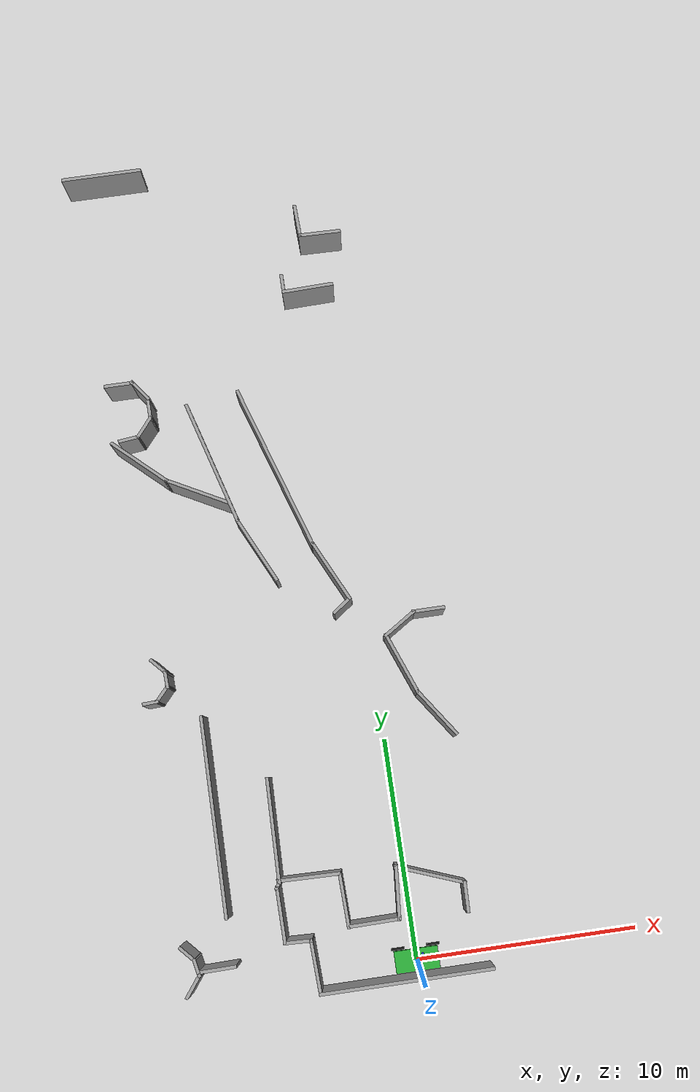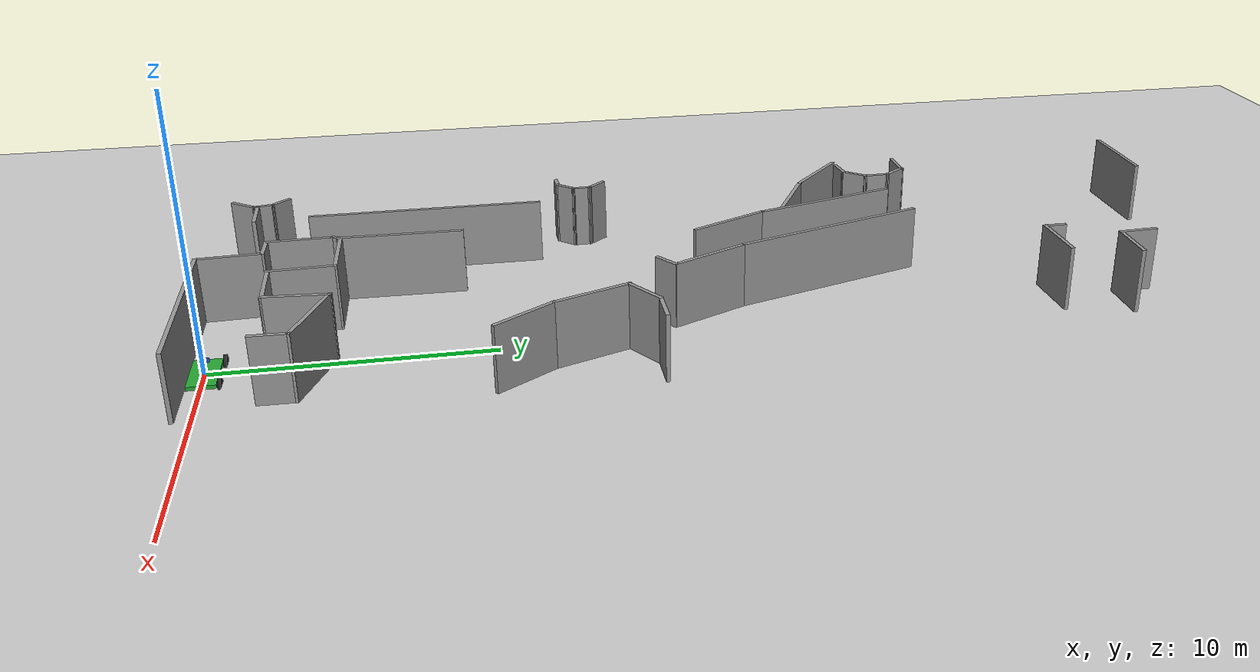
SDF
<sdf version="1.6">
 <world name="default">
  <model name="ground_plane">
   <static>1</static>
   <link name="link">
    <collision name="collision">
     <geometry><plane><normal>0 0 1</normal><size>100 100</size></plane></geometry>
     <surface><friction><ode><mu>100</mu><mu2>50</mu2></ode></friction></surface>
    </collision>
    <visual name="visual">
     <cast_shadows>0</cast_shadows>
     <geometry><plane><normal>0 0 1</normal><size>100 100</size></plane></geometry>
     <material>
      <script><uri>file://media/materials/scripts/gazebo.material</uri><name>Gazebo/Grey</name></script>
     </material>
    </visual>
   </link>
  </model>
  <model name="mall_new_reduce_size">
   <pose>-6.8092 7.5529 0 0 -0 0</pose>
   <link name="Wall_102">
    <collision name="Wall_102_Collision">
     <geometry><box><size>0.911014 0.15 2.5</size></box></geometry>
     <pose>0 0 1.25 0 -0 0</pose>
    </collision>
    <visual name="Wall_102_Visual">
     <pose>0 0 1.25 0 -0 0</pose>
     <geometry><box><size>0.911014 0.15 2.5</size></box></geometry>
     <material>
      <script><uri>file://media/materials/scripts/gazebo.material</uri><name>Gazebo/Grey</name></script>
      <ambient>1 1 1 1</ambient>
     </material>
     <meta><layer>0</layer></meta>
    </visual>
    <pose>5.13908 23.8484 0 0 -0 -1.5708</pose>
   </link>
   <link name="Wall_103">
    <collision name="Wall_103_Collision">
     <geometry><box><size>2.3915 0.15 2.5</size></box></geometry>
     <pose>0 0 1.25 0 -0 0</pose>
    </collision>
    <visual name="Wall_103_Visual">
     <pose>0 0 1.25 0 -0 0</pose>
     <geometry><box><size>2.3915 0.15 2.5</size></box></geometry>
     <material>
      <script><uri>file://media/materials/scripts/gazebo.material</uri><name>Gazebo/Grey</name></script>
      <ambient>1 1 1 1</ambient>
     </material>
     <meta><layer>0</layer></meta>
    </visual>
    <pose>6.25953 23.4864 0 0 -0 0.02316</pose>
   </link>
   <link name="Wall_126">
    <collision name="Wall_126_Collision">
     <geometry><box><size>1.5 0.15 2.5</size></box></geometry>
     <pose>0 0 1.25 0 -0 0</pose>
    </collision>
    <visual name="Wall_126_Visual">
     <pose>0 0 1.25 0 -0 0</pose>
     <geometry><box><size>1.5 0.15 2.5</size></box></geometry>
     <material>
      <script><uri>file://media/materials/scripts/gazebo.material</uri><name>Gazebo/Grey</name></script>
      <ambient>1 1 1 1</ambient>
     </material>
     <meta><layer>0</layer></meta>
    </visual>
    <pose>9.56035 7.86068 0 0 -0 3.14159</pose>
   </link>
   <link name="Wall_127">
    <collision name="Wall_127_Collision">
     <geometry><box><size>1.79669 0.15 2.5</size></box></geometry>
     <pose>0 0 1.25 0 -0 0</pose>
    </collision>
    <visual name="Wall_127_Visual">
     <pose>0 0 1.25 0 -0 0</pose>
     <geometry><box><size>1.79669 0.15 2.5</size></box></geometry>
     <material>
      <script><uri>file://media/materials/scripts/gazebo.material</uri><name>Gazebo/Grey</name></script>
      <ambient>1 1 1 1</ambient>
     </material>
     <meta><layer>0</layer></meta>
    </visual>
    <pose>8.19253 7.41582 0 0 -0 -2.57079</pose>
   </link>
   <link name="Wall_128">
    <collision name="Wall_128_Collision">
     <geometry><box><size>3.04987 0.15 2.5</size></box></geometry>
     <pose>0 0 1.25 0 -0 0</pose>
    </collision>
    <visual name="Wall_128_Visual">
     <pose>0 0 1.25 0 -0 0</pose>
     <geometry><box><size>3.04987 0.15 2.5</size></box></geometry>
     <material>
      <script><uri>file://media/materials/scripts/gazebo.material</uri><name>Gazebo/Grey</name></script>
      <ambient>1 1 1 1</ambient>
     </material>
     <meta><layer>0</layer></meta>
    </visual>
    <pose>8.01735 5.63901 0 0 -0 -1.20574</pose>
   </link>
   <link name="Wall_129">
    <collision name="Wall_129_Collision">
     <geometry><box><size>2.67124 0.15 2.5</size></box></geometry>
     <pose>0 0 1.25 0 -0 0</pose>
    </collision>
    <visual name="Wall_129_Visual">
     <pose>0 0 1.25 0 -0 0</pose>
     <geometry><box><size>2.67124 0.15 2.5</size></box></geometry>
     <material>
      <script><uri>file://media/materials/scripts/gazebo.material</uri><name>Gazebo/Grey</name></script>
      <ambient>1 1 1 1</ambient>
     </material>
     <meta><layer>0</layer></meta>
    </visual>
    <pose>9.25128 3.23607 0 0 -0 -0.966457</pose>
   </link>
   <link name="Wall_245">
    <collision name="Wall_245_Collision">
     <geometry><box><size>4.70437 0.15 2.5</size></box></geometry>
     <pose>0 0 1.25 0 -0 0</pose>
    </collision>
    <visual name="Wall_245_Visual">
     <pose>0 0 1.25 0 -0 0</pose>
     <geometry><box><size>4.70437 0.15 2.5</size></box></geometry>
     <material>
      <script><uri>file://media/materials/scripts/gazebo.material</uri><name>Gazebo/Grey</name></script>
      <ambient>1 1 1 1</ambient>
     </material>
     <meta><layer>0</layer></meta>
    </visual>
    <pose>1.30808 -0.867008 0 0 -0 -1.58931</pose>
   </link>
   <link name="Wall_246">
    <collision name="Wall_246_Collision">
     <geometry><box><size>0.40844 0.15 2.5</size></box></geometry>
     <pose>0 0 1.25 0 -0 0</pose>
    </collision>
    <visual name="Wall_246_Visual">
     <pose>0 0 1.25 0 -0 0</pose>
     <geometry><box><size>0.40844 0.15 2.5</size></box></geometry>
     <material>
      <script><uri>file://media/materials/scripts/gazebo.material</uri><name>Gazebo/Grey</name></script>
      <ambient>1 1 1 1</ambient>
     </material>
     <meta><layer>0</layer></meta>
    </visual>
    <pose>1.19003 -3.26525 0 0 -0 -2.19847</pose>
   </link>
   <link name="Wall_247">
    <collision name="Wall_247_Collision">
     <geometry><box><size>2.53 0.15 2.5</size></box></geometry>
     <pose>0 0 1.25 0 -0 0</pose>
    </collision>
    <visual name="Wall_247_Visual">
     <pose>0 0 1.25 0 -0 0</pose>
     <geometry><box><size>2.53 0.15 2.5</size></box></geometry>
     <material>
      <script><uri>file://media/materials/scripts/gazebo.material</uri><name>Gazebo/Grey</name></script>
      <ambient>1 1 1 1</ambient>
     </material>
     <meta><layer>0</layer></meta>
    </visual>
    <pose>1.14793 -4.55973 0 0 -0 -1.55658</pose>
   </link>
   <link name="Wall_248">
    <collision name="Wall_248_Collision">
     <geometry><box><size>1.286 0.15 2.5</size></box></geometry>
     <pose>0 0 1.25 0 -0 0</pose>
    </collision>
    <visual name="Wall_248_Visual">
     <pose>0 0 1.25 0 -0 0</pose>
     <geometry><box><size>1.286 0.15 2.5</size></box></geometry>
     <material>
      <script><uri>file://media/materials/scripts/gazebo.material</uri><name>Gazebo/Grey</name></script>
      <ambient>1 1 1 1</ambient>
     </material>
     <meta><layer>0</layer></meta>
    </visual>
    <pose>1.73245 -5.78757 0 0 -0 -0.037153</pose>
   </link>
   <link name="Wall_249">
    <collision name="Wall_249_Collision">
     <geometry><box><size>2.45157 0.15 2.5</size></box></geometry>
     <pose>0 0 1.25 0 -0 0</pose>
    </collision>
    <visual name="Wall_249_Visual">
     <pose>0 0 1.25 0 -0 0</pose>
     <geometry><box><size>2.45157 0.15 2.5</size></box></geometry>
     <material>
      <script><uri>file://media/materials/scripts/gazebo.material</uri><name>Gazebo/Grey</name></script>
      <ambient>1 1 1 1</ambient>
     </material>
     <meta><layer>0</layer></meta>
    </visual>
    <pose>2.35085 -6.98766 0 0 -0 -1.52665</pose>
   </link>
   <link name="Wall_250">
    <collision name="Wall_250_Collision">
     <geometry><box><size>7.76065 0.15 2.5</size></box></geometry>
     <pose>0 0 1.25 0 -0 0</pose>
    </collision>
    <visual name="Wall_250_Visual">
     <pose>0 0 1.25 0 -0 0</pose>
     <geometry><box><size>7.76065 0.15 2.5</size></box></geometry>
     <material>
      <script><uri>file://media/materials/scripts/gazebo.material</uri><name>Gazebo/Grey</name></script>
      <ambient>1 1 1 1</ambient>
     </material>
     <meta><layer>0</layer></meta>
    </visual>
    <pose>6.20696 -8.14975 0 0 -0 0.000586</pose>
   </link>
   <link name="Wall_253">
    <collision name="Wall_253_Collision">
     <geometry><box><size>1.38548 0.15 2.5</size></box></geometry>
     <pose>0 0 1.25 0 -0 0</pose>
    </collision>
    <visual name="Wall_253_Visual">
     <pose>0 0 1.25 0 -0 0</pose>
     <geometry><box><size>1.38548 0.15 2.5</size></box></geometry>
     <material>
      <script><uri>file://media/materials/scripts/gazebo.material</uri><name>Gazebo/Grey</name></script>
      <ambient>1 1 1 1</ambient>
     </material>
     <meta><layer>0</layer></meta>
    </visual>
    <pose>9.31734 -4.9398 0 0 -0 1.54519</pose>
   </link>
   <link name="Wall_254">
    <collision name="Wall_254_Collision">
     <geometry><box><size>3.27138 0.15 2.5</size></box></geometry>
     <pose>0 0 1.25 0 -0 0</pose>
    </collision>
    <visual name="Wall_254_Visual">
     <pose>0 0 1.25 0 -0 0</pose>
     <geometry><box><size>3.27138 0.15 2.5</size></box></geometry>
     <material>
      <script><uri>file://media/materials/scripts/gazebo.material</uri><name>Gazebo/Grey</name></script>
      <ambient>1 1 1 1</ambient>
     </material>
     <meta><layer>0</layer></meta>
    </visual>
    <pose>7.88874 -3.75366 0 0 -0 2.77875</pose>
   </link>
   <link name="Wall_255">
    <collision name="Wall_255_Collision">
     <geometry><box><size>2.43165 0.15 2.5</size></box></geometry>
     <pose>0 0 1.25 0 -0 0</pose>
    </collision>
    <visual name="Wall_255_Visual">
     <pose>0 0 1.25 0 -0 0</pose>
     <geometry><box><size>2.43165 0.15 2.5</size></box></geometry>
     <material>
      <script><uri>file://media/materials/scripts/gazebo.material</uri><name>Gazebo/Grey</name></script>
      <ambient>1 1 1 1</ambient>
     </material>
     <meta><layer>0</layer></meta>
    </visual>
    <pose>6.35442 -4.32233 0 0 -0 -1.64969</pose>
   </link>
   <link name="Wall_256">
    <collision name="Wall_256_Collision">
     <geometry><box><size>2.39373 0.15 2.5</size></box></geometry>
     <pose>0 0 1.25 0 -0 0</pose>
    </collision>
    <visual name="Wall_256_Visual">
     <pose>0 0 1.25 0 -0 0</pose>
     <geometry><box><size>2.39373 0.15 2.5</size></box></geometry>
     <material>
      <script><uri>file://media/materials/scripts/gazebo.material</uri><name>Gazebo/Grey</name></script>
      <ambient>1 1 1 1</ambient>
     </material>
     <meta><layer>0</layer></meta>
    </visual>
    <pose>5.14271 -5.45702 0 0 -0 -3.13083</pose>
   </link>
   <link name="Wall_257">
    <collision name="Wall_257_Collision">
     <geometry><box><size>2.48743 0.15 2.5</size></box></geometry>
     <pose>0 0 1.25 0 -0 0</pose>
    </collision>
    <visual name="Wall_257_Visual">
     <pose>0 0 1.25 0 -0 0</pose>
     <geometry><box><size>2.48743 0.15 2.5</size></box></geometry>
     <material>
      <script><uri>file://media/materials/scripts/gazebo.material</uri><name>Gazebo/Grey</name></script>
      <ambient>1 1 1 1</ambient>
     </material>
     <meta><layer>0</layer></meta>
    </visual>
    <pose>3.98296 -4.31566 0 0 -0 1.60328</pose>
   </link>
   <link name="Wall_258">
    <collision name="Wall_258_Collision">
     <geometry><box><size>2.86843 0.15 2.5</size></box></geometry>
     <pose>0 0 1.25 0 -0 0</pose>
    </collision>
    <visual name="Wall_258_Visual">
     <pose>0 0 1.25 0 -0 0</pose>
     <geometry><box><size>2.86843 0.15 2.5</size></box></geometry>
     <material>
      <script><uri>file://media/materials/scripts/gazebo.material</uri><name>Gazebo/Grey</name></script>
      <ambient>1 1 1 1</ambient>
     </material>
     <meta><layer>0</layer></meta>
    </visual>
    <pose>2.58612 -3.10264 0 0 -0 3.11933</pose>
   </link>
   <link name="Wall_263">
    <collision name="Wall_263_Collision">
     <geometry><box><size>9.01306 0.15 2.5</size></box></geometry>
     <pose>0 0 1.25 0 -0 0</pose>
    </collision>
    <visual name="Wall_263_Visual">
     <pose>0 0 1.25 0 -0 0</pose>
     <geometry><box><size>9.01306 0.15 2.5</size></box></geometry>
     <material>
      <script><uri>file://media/materials/scripts/gazebo.material</uri><name>Gazebo/Grey</name></script>
      <ambient>1 1 1 1</ambient>
     </material>
     <meta><layer>0</layer></meta>
    </visual>
    <pose>-1.21952 0.09951 0 0 -0 -1.57583</pose>
   </link>
   <link name="Wall_270">
    <collision name="Wall_270_Collision">
     <geometry><box><size>0.937561 0.15 2.5</size></box></geometry>
     <pose>0 0 1.25 0 -0 0</pose>
    </collision>
    <visual name="Wall_270_Visual">
     <pose>0 0 1.25 0 -0 0</pose>
     <geometry><box><size>0.937561 0.15 2.5</size></box></geometry>
     <material>
      <script><uri>file://media/materials/scripts/gazebo.material</uri><name>Gazebo/Grey</name></script>
      <ambient>1 1 1 1</ambient>
     </material>
     <meta><layer>0</layer></meta>
    </visual>
    <pose>-3.13761 -5.61857 0 0 -0 -0.825217</pose>
   </link>
   <link name="Wall_271">
    <collision name="Wall_271_Collision">
     <geometry><box><size>0.841723 0.15 2.5</size></box></geometry>
     <pose>0 0 1.25 0 -0 0</pose>
    </collision>
    <visual name="Wall_271_Visual">
     <pose>0 0 1.25 0 -0 0</pose>
     <geometry><box><size>0.841723 0.15 2.5</size></box></geometry>
     <material>
      <script><uri>file://media/materials/scripts/gazebo.material</uri><name>Gazebo/Grey</name></script>
      <ambient>1 1 1 1</ambient>
     </material>
     <meta><layer>0</layer></meta>
    </visual>
    <pose>-2.79889 -6.26091 0 0 -0 -1.36232</pose>
   </link>
   <link name="Wall_272">
    <collision name="Wall_272_Collision">
     <geometry><box><size>1.2184 0.15 2.5</size></box></geometry>
     <pose>0 0 1.25 0 -0 0</pose>
    </collision>
    <visual name="Wall_272_Visual">
     <pose>0 0 1.25 0 -0 0</pose>
     <geometry><box><size>1.2184 0.15 2.5</size></box></geometry>
     <material>
      <script><uri>file://media/materials/scripts/gazebo.material</uri><name>Gazebo/Grey</name></script>
      <ambient>1 1 1 1</ambient>
     </material>
     <meta><layer>0</layer></meta>
    </visual>
    <pose>-3.04961 -7.02531 0 0 -0 -2.21847</pose>
   </link>
   <link name="Wall_280">
    <collision name="Wall_280_Collision">
     <geometry><box><size>1.75812 0.15 2.5</size></box></geometry>
     <pose>0 0 1.25 0 -0 0</pose>
    </collision>
    <visual name="Wall_280_Visual">
     <pose>0 0 1.25 0 -0 0</pose>
     <geometry><box><size>1.75812 0.15 2.5</size></box></geometry>
     <material>
      <script><uri>file://media/materials/scripts/gazebo.material</uri><name>Gazebo/Grey</name></script>
      <ambient>1 1 1 1</ambient>
     </material>
     <meta><layer>0</layer></meta>
    </visual>
    <pose>-1.93612 -6.45549 0 0 -0 0.013364</pose>
   </link>
   <link name="Wall_321">
    <collision name="Wall_321_Collision">
     <geometry><box><size>0.996431 0.15 2.5</size></box></geometry>
     <pose>0 0 1.25 0 -0 0</pose>
    </collision>
    <visual name="Wall_321_Visual">
     <pose>0 0 1.25 0 -0 0</pose>
     <geometry><box><size>0.996431 0.15 2.5</size></box></geometry>
     <material>
      <script><uri>file://media/materials/scripts/gazebo.material</uri><name>Gazebo/Grey</name></script>
      <ambient>1 1 1 1</ambient>
     </material>
     <meta><layer>0</layer></meta>
    </visual>
    <pose>-2.78786 7.05157 0 0 -0 -0.833746</pose>
   </link>
   <link name="Wall_322">
    <collision name="Wall_322_Collision">
     <geometry><box><size>0.808487 0.15 2.5</size></box></geometry>
     <pose>0 0 1.25 0 -0 0</pose>
    </collision>
    <visual name="Wall_322_Visual">
     <pose>0 0 1.25 0 -0 0</pose>
     <geometry><box><size>0.808487 0.15 2.5</size></box></geometry>
     <material>
      <script><uri>file://media/materials/scripts/gazebo.material</uri><name>Gazebo/Grey</name></script>
      <ambient>1 1 1 1</ambient>
     </material>
     <meta><layer>0</layer></meta>
    </visual>
    <pose>-2.51788 6.42855 0 0 -0 -1.52686</pose>
   </link>
   <link name="Wall_323">
    <collision name="Wall_323_Collision">
     <geometry><box><size>0.955507 0.15 2.5</size></box></geometry>
     <pose>0 0 1.25 0 -0 0</pose>
    </collision>
    <visual name="Wall_323_Visual">
     <pose>0 0 1.25 0 -0 0</pose>
     <geometry><box><size>0.955507 0.15 2.5</size></box></geometry>
     <material>
      <script><uri>file://media/materials/scripts/gazebo.material</uri><name>Gazebo/Grey</name></script>
      <ambient>1 1 1 1</ambient>
     </material>
     <meta><layer>0</layer></meta>
    </visual>
    <pose>-2.77393 5.81089 0 0 -0 -2.30728</pose>
   </link>
   <link name="Wall_324">
    <collision name="Wall_324_Collision">
     <geometry><box><size>0.751238 0.15 2.5</size></box></geometry>
     <pose>0 0 1.25 0 -0 0</pose>
    </collision>
    <visual name="Wall_324_Visual">
     <pose>0 0 1.25 0 -0 0</pose>
     <geometry><box><size>0.751238 0.15 2.5</size></box></geometry>
     <material>
      <script><uri>file://media/materials/scripts/gazebo.material</uri><name>Gazebo/Grey</name></script>
      <ambient>1 1 1 1</ambient>
     </material>
     <meta><layer>0</layer></meta>
    </visual>
    <pose>-3.34446 5.48841 0 0 -0 -3.09342</pose>
   </link>
   <link name="Wall_54">
    <collision name="Wall_54_Collision">
     <geometry><box><size>3.72999 0.15 2.5</size></box></geometry>
     <pose>0 0 1.25 0 -0 0</pose>
    </collision>
    <visual name="Wall_54_Visual">
     <pose>0 0 1.25 0 -0 0</pose>
     <geometry><box><size>3.72999 0.15 2.5</size></box></geometry>
     <material>
      <script><uri>file://media/materials/scripts/gazebo.material</uri><name>Gazebo/Grey</name></script>
      <ambient>1 1 1 1</ambient>
     </material>
     <meta><layer>0</layer></meta>
    </visual>
    <pose>-2.53762 30.2774 0 0 -0 -0.007328</pose>
   </link>
   <link name="Wall_75">
    <collision name="Wall_75_Collision">
     <geometry><box><size>0.996724 0.15 2.5</size></box></geometry>
     <pose>0 0 1.25 0 -0 0</pose>
    </collision>
    <visual name="Wall_75_Visual">
     <pose>0 0 1.25 0 -0 0</pose>
     <geometry><box><size>0.996724 0.15 2.5</size></box></geometry>
     <material>
      <script><uri>file://media/materials/scripts/gazebo.material</uri><name>Gazebo/Grey</name></script>
      <ambient>1 1 1 1</ambient>
     </material>
     <meta><layer>0</layer></meta>
    </visual>
    <pose>-2.811 17.5721 0 0 -0 0.113209</pose>
   </link>
   <link name="Wall_76">
    <collision name="Wall_76_Collision">
     <geometry><box><size>1.17578 0.15 2.5</size></box></geometry>
     <pose>0 0 1.25 0 -0 0</pose>
    </collision>
    <visual name="Wall_76_Visual">
     <pose>0 0 1.25 0 -0 0</pose>
     <geometry><box><size>1.17578 0.15 2.5</size></box></geometry>
     <material>
      <script><uri>file://media/materials/scripts/gazebo.material</uri><name>Gazebo/Grey</name></script>
      <ambient>1 1 1 1</ambient>
     </material>
     <meta><layer>0</layer></meta>
    </visual>
    <pose>-2.042 18.0205 0 0 -0 0.869416</pose>
   </link>
   <link name="Wall_77">
    <collision name="Wall_77_Collision">
     <geometry><box><size>1.10885 0.15 2.5</size></box></geometry>
     <pose>0 0 1.25 0 -0 0</pose>
    </collision>
    <visual name="Wall_77_Visual">
     <pose>0 0 1.25 0 -0 0</pose>
     <geometry><box><size>1.10885 0.15 2.5</size></box></geometry>
     <material>
      <script><uri>file://media/materials/scripts/gazebo.material</uri><name>Gazebo/Grey</name></script>
      <ambient>1 1 1 1</ambient>
     </material>
     <meta><layer>0</layer></meta>
    </visual>
    <pose>-1.71974 18.8742 0 0 -0 1.58893</pose>
   </link>
   <link name="Wall_78">
    <collision name="Wall_78_Collision">
     <geometry><box><size>1.20591 0.15 2.5</size></box></geometry>
     <pose>0 0 1.25 0 -0 0</pose>
    </collision>
    <visual name="Wall_78_Visual">
     <pose>0 0 1.25 0 -0 0</pose>
     <geometry><box><size>1.20591 0.15 2.5</size></box></geometry>
     <material>
      <script><uri>file://media/materials/scripts/gazebo.material</uri><name>Gazebo/Grey</name></script>
      <ambient>1 1 1 1</ambient>
     </material>
     <meta><layer>0</layer></meta>
    </visual>
    <pose>-2.02604 19.7599 0 0 -0 2.2101</pose>
   </link>
   <link name="Wall_79">
    <collision name="Wall_79_Collision">
     <geometry><box><size>1.36534 0.15 2.5</size></box></geometry>
     <pose>0 0 1.25 0 -0 0</pose>
    </collision>
    <visual name="Wall_79_Visual">
     <pose>0 0 1.25 0 -0 0</pose>
     <geometry><box><size>1.36534 0.15 2.5</size></box></geometry>
     <material>
      <script><uri>file://media/materials/scripts/gazebo.material</uri><name>Gazebo/Grey</name></script>
      <ambient>1 1 1 1</ambient>
     </material>
     <meta><layer>0</layer></meta>
    </visual>
    <pose>-2.95734 20.1705 0 0 -0 3.13444</pose>
   </link>
   <link name="Wall_83">
    <collision name="Wall_83_Collision">
     <geometry><box><size>3.17702 0.15 2.5</size></box></geometry>
     <pose>0 0 1.25 0 -0 0</pose>
    </collision>
    <visual name="Wall_83_Visual">
     <pose>0 0 1.25 0 -0 0</pose>
     <geometry><box><size>3.17702 0.15 2.5</size></box></geometry>
     <material>
      <script><uri>file://media/materials/scripts/gazebo.material</uri><name>Gazebo/Grey</name></script>
      <ambient>1 1 1 1</ambient>
     </material>
     <meta><layer>0</layer></meta>
    </visual>
    <pose>-2.47787 16.4426 0 0 -0 -0.742728</pose>
   </link>
   <link name="Wall_84">
    <collision name="Wall_84_Collision">
     <geometry><box><size>3.09961 0.15 2.5</size></box></geometry>
     <pose>0 0 1.25 0 -0 0</pose>
    </collision>
    <visual name="Wall_84_Visual">
     <pose>0 0 1.25 0 -0 0</pose>
     <geometry><box><size>3.09961 0.15 2.5</size></box></geometry>
     <material>
      <script><uri>file://media/materials/scripts/gazebo.material</uri><name>Gazebo/Grey</name></script>
      <ambient>1 1 1 1</ambient>
     </material>
     <meta><layer>0</layer></meta>
    </visual>
    <pose>-0.052404 14.7261 0 0 -0 -0.489119</pose>
   </link>
   <link name="Wall_87">
    <collision name="Wall_87_Collision">
     <geometry><box><size>5.96136 0.15 2.5</size></box></geometry>
     <pose>0 0 1.25 0 -0 0</pose>
    </collision>
    <visual name="Wall_87_Visual">
     <pose>0 0 1.25 0 -0 0</pose>
     <geometry><box><size>5.96136 0.15 2.5</size></box></geometry>
     <material>
      <script><uri>file://media/materials/scripts/gazebo.material</uri><name>Gazebo/Grey</name></script>
      <ambient>1 1 1 1</ambient>
     </material>
     <meta><layer>0</layer></meta>
    </visual>
    <pose>0.791494 15.9362 0 0 -0 -1.29247</pose>
   </link>
   <link name="Wall_88">
    <collision name="Wall_88_Collision">
     <geometry><box><size>3.37715 0.15 2.5</size></box></geometry>
     <pose>0 0 1.25 0 -0 0</pose>
    </collision>
    <visual name="Wall_88_Visual">
     <pose>0 0 1.25 0 -0 0</pose>
     <geometry><box><size>3.37715 0.15 2.5</size></box></geometry>
     <material>
      <script><uri>file://media/materials/scripts/gazebo.material</uri><name>Gazebo/Grey</name></script>
      <ambient>1 1 1 1</ambient>
     </material>
     <meta><layer>0</layer></meta>
    </visual>
    <pose>2.28271 11.662 0 0 -0 -1.12695</pose>
   </link>
   <link name="Wall_91">
    <collision name="Wall_91_Collision">
     <geometry><box><size>7.96646 0.15 2.5</size></box></geometry>
     <pose>0 0 1.25 0 -0 0</pose>
    </collision>
    <visual name="Wall_91_Visual">
     <pose>0 0 1.25 0 -0 0</pose>
     <geometry><box><size>7.96646 0.15 2.5</size></box></geometry>
     <material>
      <script><uri>file://media/materials/scripts/gazebo.material</uri><name>Gazebo/Grey</name></script>
      <ambient>1 1 1 1</ambient>
     </material>
     <meta><layer>0</layer></meta>
    </visual>
    <pose>3.59702 15.3339 0 0 -0 -1.25918</pose>
   </link>
   <link name="Wall_92">
    <collision name="Wall_92_Collision">
     <geometry><box><size>3.15983 0.15 2.5</size></box></geometry>
     <pose>0 0 1.25 0 -0 0</pose>
    </collision>
    <visual name="Wall_92_Visual">
     <pose>0 0 1.25 0 -0 0</pose>
     <geometry><box><size>3.15983 0.15 2.5</size></box></geometry>
     <material>
      <script><uri>file://media/materials/scripts/gazebo.material</uri><name>Gazebo/Grey</name></script>
      <ambient>1 1 1 1</ambient>
     </material>
     <meta><layer>0</layer></meta>
    </visual>
    <pose>5.46962 10.2341 0 0 -0 -1.12329</pose>
   </link>
   <link name="Wall_93">
    <collision name="Wall_93_Collision">
     <geometry><box><size>1.06714 0.15 2.5</size></box></geometry>
     <pose>0 0 1.25 0 -0 0</pose>
    </collision>
    <visual name="Wall_93_Visual">
     <pose>0 0 1.25 0 -0 0</pose>
     <geometry><box><size>1.06714 0.15 2.5</size></box></geometry>
     <material>
      <script><uri>file://media/materials/scripts/gazebo.material</uri><name>Gazebo/Grey</name></script>
      <ambient>1 1 1 1</ambient>
     </material>
     <meta><layer>0</layer></meta>
    </visual>
    <pose>5.74679 8.59882 0 0 -0 -2.52467</pose>
   </link>
   <link name="Wall_96">
    <collision name="Wall_96_Collision">
     <geometry><box><size>1.56057 0.15 2.5</size></box></geometry>
     <pose>0 0 1.25 0 -0 0</pose>
    </collision>
    <visual name="Wall_96_Visual">
     <pose>0 0 1.25 0 -0 0</pose>
     <geometry><box><size>1.56057 0.15 2.5</size></box></geometry>
     <material>
      <script><uri>file://media/materials/scripts/gazebo.material</uri><name>Gazebo/Grey</name></script>
      <ambient>1 1 1 1</ambient>
     </material>
     <meta><layer>0</layer></meta>
    </visual>
    <pose>6.23658 26.75 0 0 -0 -1.52873</pose>
   </link>
   <link name="Wall_97">
    <collision name="Wall_97_Collision">
     <geometry><box><size>1.97301 0.15 2.5</size></box></geometry>
     <pose>0 0 1.25 0 -0 0</pose>
    </collision>
    <visual name="Wall_97_Visual">
     <pose>0 0 1.25 0 -0 0</pose>
     <geometry><box><size>1.97301 0.15 2.5</size></box></geometry>
     <material>
      <script><uri>file://media/materials/scripts/gazebo.material</uri><name>Gazebo/Grey</name></script>
      <ambient>1 1 1 1</ambient>
     </material>
     <meta><layer>0</layer></meta>
    </visual>
    <pose>7.17748 26.0156 0 0 -0 -0.024409</pose>
   </link>
   <static>1</static>
  </model>
  <model name="car">
   <link name="chassis">
    <pose>0 0 0.3 0 -0 0</pose>
    <collision name="collision"><geometry><box><size>2 1 0.2</size></box></geometry></collision>
    <visual name="visual">
     <geometry><box><size>2 1 0.2</size></box></geometry>
     <material>
      <script><uri>file://media/materials/scripts/gazebo.material</uri><name>Gazebo/Green</name></script>
     </material>
    </visual>
    <inertial>
     <inertia><ixx>1</ixx><ixy>0</ixy><ixz>0</ixz><iyy>1</iyy><iyz>0</iyz><izz>1</izz></inertia>
     <mass>1</mass>
    </inertial>
   </link>
   <link name="front_left_wheel">
    <pose>0.8 0.6 0.3 -0 1.5707 1.5707</pose>
    <collision name="collision">
     <geometry><cylinder><radius>0.3</radius><length>0.1</length></cylinder></geometry>
    </collision>
    <visual name="visual">
     <geometry><cylinder><radius>0.3</radius><length>0.1</length></cylinder></geometry>
     <material>
      <script><uri>file://media/materials/scripts/gazebo.material</uri><name>Gazebo/Black</name></script>
     </material>
    </visual>
    <inertial>
     <inertia><ixx>1</ixx><ixy>0</ixy><ixz>0</ixz><iyy>1</iyy><iyz>0</iyz><izz>1</izz></inertia>
     <mass>1</mass>
    </inertial>
   </link>
   <link name="front_right_wheel">
    <pose>0.8 -0.6 0.3 -0 1.5707 1.5707</pose>
    <collision name="collision">
     <geometry><cylinder><radius>0.3</radius><length>0.1</length></cylinder></geometry>
    </collision>
    <visual name="visual">
     <geometry><cylinder><radius>0.3</radius><length>0.1</length></cylinder></geometry>
     <material>
      <script><uri>file://media/materials/scripts/gazebo.material</uri><name>Gazebo/Black</name></script>
     </material>
    </visual>
    <inertial>
     <inertia><ixx>1</ixx><ixy>0</ixy><ixz>0</ixz><iyy>1</iyy><iyz>0</iyz><izz>1</izz></inertia>
     <mass>1</mass>
    </inertial>
   </link>
   <link name="back_right_wheel">
    <pose>-0.8 -0.6 0.3 -0 1.5707 1.5707</pose>
    <collision name="collision">
     <geometry><cylinder><radius>0.3</radius><length>0.1</length></cylinder></geometry>
    </collision>
    <visual name="visual">
     <geometry><cylinder><radius>0.3</radius><length>0.1</length></cylinder></geometry>
     <material>
      <script><uri>file://media/materials/scripts/gazebo.material</uri><name>Gazebo/Black</name></script>
     </material>
    </visual>
    <inertial>
     <inertia><ixx>1</ixx><ixy>0</ixy><ixz>0</ixz><iyy>1</iyy><iyz>0</iyz><izz>1</izz></inertia>
     <mass>1</mass>
    </inertial>
   </link>
   <link name="back_left_wheel">
    <pose>-0.8 0.6 0.3 -0 1.5707 1.5707</pose>
    <collision name="collision">
     <geometry><cylinder><radius>0.3</radius><length>0.1</length></cylinder></geometry>
    </collision>
    <visual name="visual">
     <geometry><cylinder><radius>0.3</radius><length>0.1</length></cylinder></geometry>
     <material>
      <script><uri>file://media/materials/scripts/gazebo.material</uri><name>Gazebo/Black</name></script>
     </material>
    </visual>
    <inertial>
     <inertia><ixx>1</ixx><ixy>0</ixy><ixz>0</ixz><iyy>1</iyy><iyz>0</iyz><izz>1</izz></inertia>
     <mass>1</mass>
    </inertial>
   </link>
   <link name="gas_pedal">
    <pose>0.3 0.1 0.5 0 -0 0</pose>
    <collision name="collision"><geometry><box><size>0.1 0.1 0.1</size></box></geometry></collision>
    <visual name="visual">
     <geometry><box><size>0.1 0.1 0.1</size></box></geometry>
     <material>
      <script><uri>file://media/materials/scripts/gazebo.material</uri><name>Gazebo/Red</name></script>
     </material>
    </visual>
    <inertial>
     <inertia><ixx>1</ixx><ixy>0</ixy><ixz>0</ixz><iyy>1</iyy><iyz>0</iyz><izz>1</izz></inertia>
     <mass>1</mass>
    </inertial>
   </link>
   <link name="brake_pedal">
    <pose>0.3 0.25 0.5 0 -0 0</pose>
    <collision name="collision"><geometry><box><size>0.1 0.1 0.1</size></box></geometry></collision>
    <visual name="visual">
     <geometry><box><size>0.1 0.1 0.1</size></box></geometry>
     <material>
      <script><uri>file://media/materials/scripts/gazebo.material</uri><name>Gazebo/Blue</name></script>
     </material>
    </visual>
    <inertial>
     <inertia><ixx>1</ixx><ixy>0</ixy><ixz>0</ixz><iyy>1</iyy><iyz>0</iyz><izz>1</izz></inertia>
     <mass>1</mass>
    </inertial>
   </link>
   <link name="steering_wheel">
    <pose>0.3 0.2 1 0 1.5707 0</pose>
    <collision name="collision">
     <geometry><cylinder><radius>0.1</radius><length>0.01</length></cylinder></geometry>
    </collision>
    <visual name="visual">
     <geometry><cylinder><radius>0.1</radius><length>0.01</length></cylinder></geometry>
     <material>
      <script><uri>file://media/materials/scripts/gazebo.material</uri><name>Gazebo/Blue</name></script>
     </material>
    </visual>
    <inertial>
     <inertia><ixx>1</ixx><ixy>0</ixy><ixz>0</ixz><iyy>1</iyy><iyz>0</iyz><izz>1</izz></inertia>
     <mass>1</mass>
    </inertial>
   </link>
   <joint name="gas_joint" type="prismatic">
    <parent>chassis</parent>
    <child>gas_pedal</child>
    <axis>
     <xyz>1 0 0</xyz>
     <limit><lower>0</lower><upper>0.2</upper></limit>
     <use_parent_model_frame>1</use_parent_model_frame>
     <dynamics><spring_reference>0</spring_reference><spring_stiffness>0</spring_stiffness></dynamics>
    </axis>
   </joint>
   <joint name="brake_joint" type="prismatic">
    <parent>chassis</parent>
    <child>brake_pedal</child>
    <axis>
     <xyz>1 0 0</xyz>
     <limit><lower>0</lower><upper>0.2</upper></limit>
     <use_parent_model_frame>1</use_parent_model_frame>
     <dynamics><spring_reference>0</spring_reference><spring_stiffness>0</spring_stiffness></dynamics>
    </axis>
   </joint>
   <joint name="steering_joint" type="revolute">
    <parent>chassis</parent>
    <child>steering_wheel</child>
    <axis>
     <xyz>1 0 0</xyz>
     <limit><lower>-7.853</lower><upper>7.853</upper></limit>
     <use_parent_model_frame>1</use_parent_model_frame>
     <dynamics><spring_reference>0</spring_reference><spring_stiffness>0</spring_stiffness></dynamics>
    </axis>
   </joint>
   <joint name="front_left_joint" type="revolute2">
    <parent>chassis</parent>
    <child>front_left_wheel</child>
    <axis>
     <xyz>0 0 1</xyz>
     <limit><lower>-0.0500032</lower><upper>-0.0500032</upper></limit>
     <use_parent_model_frame>1</use_parent_model_frame>
     <dynamics><spring_reference>0</spring_reference><spring_stiffness>0</spring_stiffness></dynamics>
    </axis>
    <axis2>
     <xyz>0 1 0</xyz>
     <use_parent_model_frame>1</use_parent_model_frame>
     <dynamics><spring_reference>0</spring_reference><spring_stiffness>0</spring_stiffness></dynamics>
    </axis2>
    <physics><ode><limit><cfm>0</cfm><erp>0.9</erp></limit></ode></physics>
   </joint>
   <joint name="front_right_joint" type="revolute2">
    <parent>chassis</parent>
    <child>front_right_wheel</child>
    <axis>
     <xyz>0 0 1</xyz>
     <limit><lower>-0.0500032</lower><upper>-0.0500032</upper></limit>
     <use_parent_model_frame>1</use_parent_model_frame>
     <dynamics><spring_reference>0</spring_reference><spring_stiffness>0</spring_stiffness></dynamics>
    </axis>
    <axis2>
     <xyz>0 1 0</xyz>
     <use_parent_model_frame>1</use_parent_model_frame>
     <dynamics><spring_reference>0</spring_reference><spring_stiffness>0</spring_stiffness></dynamics>
    </axis2>
    <physics><ode><limit><cfm>0</cfm><erp>0.9</erp></limit></ode></physics>
   </joint>
   <joint name="back_right_joint" type="revolute2">
    <parent>chassis</parent>
    <child>back_right_wheel</child>
    <axis>
     <xyz>0 0 1</xyz>
     <limit><lower>0</lower><upper>0</upper></limit>
     <use_parent_model_frame>1</use_parent_model_frame>
     <dynamics><spring_reference>0</spring_reference><spring_stiffness>0</spring_stiffness></dynamics>
    </axis>
    <axis2>
     <xyz>0 1 0</xyz>
     <use_parent_model_frame>1</use_parent_model_frame>
     <dynamics><spring_reference>0</spring_reference><spring_stiffness>0</spring_stiffness></dynamics>
    </axis2>
    <physics><ode><limit><cfm>0</cfm><erp>0.9</erp></limit></ode></physics>
   </joint>
   <joint name="back_left_joint" type="revolute2">
    <parent>chassis</parent>
    <child>back_left_wheel</child>
    <axis>
     <xyz>0 0 1</xyz>
     <limit><lower>0</lower><upper>0</upper></limit>
     <use_parent_model_frame>1</use_parent_model_frame>
     <dynamics><spring_reference>0</spring_reference><spring_stiffness>0</spring_stiffness></dynamics>
    </axis>
    <axis2>
     <xyz>0 1 0</xyz>
     <use_parent_model_frame>1</use_parent_model_frame>
     <dynamics><spring_reference>0</spring_reference><spring_stiffness>0</spring_stiffness></dynamics>
    </axis2>
    <physics><ode><limit><cfm>0</cfm><erp>0.9</erp></limit></ode></physics>
   </joint>
   <plugin name="vehicle" filename="libVehiclePlugin.so">
    <front_left>front_left_joint</front_left>
    <front_right>front_right_joint</front_right>
    <back_left>back_left_joint</back_left>
    <back_right>back_right_joint</back_right>
    <gas>gas_joint</gas>
    <brake>brake_joint</brake>
    <steering>steering_joint</steering>
    <front_power>10</front_power>
    <rear_power>10</rear_power>
    <tire_angle_range>0.5</tire_angle_range>
    <max_speed>10</max_speed>
    <aero_load>0.1</aero_load>
   </plugin>
   <pose>0 0 -0.3 0 -0 0</pose>
  </model>
  <model name="car_0">
   <link name="chassis">
    <pose>0 0 0.3 0 -0 0</pose>
    <collision name="collision"><geometry><box><size>2 1 0.2</size></box></geometry></collision>
    <visual name="visual">
     <geometry><box><size>2 1 0.2</size></box></geometry>
     <material>
      <script><uri>file://media/materials/scripts/gazebo.material</uri><name>Gazebo/Green</name></script>
     </material>
    </visual>
    <inertial>
     <inertia><ixx>1</ixx><ixy>0</ixy><ixz>0</ixz><iyy>1</iyy><iyz>0</iyz><izz>1</izz></inertia>
     <mass>1</mass>
    </inertial>
   </link>
   <link name="front_left_wheel">
    <pose>0.8 0.6 0.3 -0 1.5707 1.5707</pose>
    <collision name="collision">
     <geometry><cylinder><radius>0.3</radius><length>0.1</length></cylinder></geometry>
    </collision>
    <visual name="visual">
     <geometry><cylinder><radius>0.3</radius><length>0.1</length></cylinder></geometry>
     <material>
      <script><uri>file://media/materials/scripts/gazebo.material</uri><name>Gazebo/Black</name></script>
     </material>
    </visual>
    <inertial>
     <inertia><ixx>1</ixx><ixy>0</ixy><ixz>0</ixz><iyy>1</iyy><iyz>0</iyz><izz>1</izz></inertia>
     <mass>1</mass>
    </inertial>
   </link>
   <link name="front_right_wheel">
    <pose>0.8 -0.6 0.3 -0 1.5707 1.5707</pose>
    <collision name="collision">
     <geometry><cylinder><radius>0.3</radius><length>0.1</length></cylinder></geometry>
    </collision>
    <visual name="visual">
     <geometry><cylinder><radius>0.3</radius><length>0.1</length></cylinder></geometry>
     <material>
      <script><uri>file://media/materials/scripts/gazebo.material</uri><name>Gazebo/Black</name></script>
     </material>
    </visual>
    <inertial>
     <inertia><ixx>1</ixx><ixy>0</ixy><ixz>0</ixz><iyy>1</iyy><iyz>0</iyz><izz>1</izz></inertia>
     <mass>1</mass>
    </inertial>
   </link>
   <link name="back_right_wheel">
    <pose>-0.8 -0.6 0.3 -0 1.5707 1.5707</pose>
    <collision name="collision">
     <geometry><cylinder><radius>0.3</radius><length>0.1</length></cylinder></geometry>
    </collision>
    <visual name="visual">
     <geometry><cylinder><radius>0.3</radius><length>0.1</length></cylinder></geometry>
     <material>
      <script><uri>file://media/materials/scripts/gazebo.material</uri><name>Gazebo/Black</name></script>
     </material>
    </visual>
    <inertial>
     <inertia><ixx>1</ixx><ixy>0</ixy><ixz>0</ixz><iyy>1</iyy><iyz>0</iyz><izz>1</izz></inertia>
     <mass>1</mass>
    </inertial>
   </link>
   <link name="back_left_wheel">
    <pose>-0.8 0.6 0.3 -0 1.5707 1.5707</pose>
    <collision name="collision">
     <geometry><cylinder><radius>0.3</radius><length>0.1</length></cylinder></geometry>
    </collision>
    <visual name="visual">
     <geometry><cylinder><radius>0.3</radius><length>0.1</length></cylinder></geometry>
     <material>
      <script><uri>file://media/materials/scripts/gazebo.material</uri><name>Gazebo/Black</name></script>
     </material>
    </visual>
    <inertial>
     <inertia><ixx>1</ixx><ixy>0</ixy><ixz>0</ixz><iyy>1</iyy><iyz>0</iyz><izz>1</izz></inertia>
     <mass>1</mass>
    </inertial>
   </link>
   <link name="gas_pedal">
    <pose>0.3 0.1 0.5 0 -0 0</pose>
    <collision name="collision"><geometry><box><size>0.1 0.1 0.1</size></box></geometry></collision>
    <visual name="visual">
     <geometry><box><size>0.1 0.1 0.1</size></box></geometry>
     <material>
      <script><uri>file://media/materials/scripts/gazebo.material</uri><name>Gazebo/Red</name></script>
     </material>
    </visual>
    <inertial>
     <inertia><ixx>1</ixx><ixy>0</ixy><ixz>0</ixz><iyy>1</iyy><iyz>0</iyz><izz>1</izz></inertia>
     <mass>1</mass>
    </inertial>
   </link>
   <link name="brake_pedal">
    <pose>0.3 0.25 0.5 0 -0 0</pose>
    <collision name="collision"><geometry><box><size>0.1 0.1 0.1</size></box></geometry></collision>
    <visual name="visual">
     <geometry><box><size>0.1 0.1 0.1</size></box></geometry>
     <material>
      <script><uri>file://media/materials/scripts/gazebo.material</uri><name>Gazebo/Blue</name></script>
     </material>
    </visual>
    <inertial>
     <inertia><ixx>1</ixx><ixy>0</ixy><ixz>0</ixz><iyy>1</iyy><iyz>0</iyz><izz>1</izz></inertia>
     <mass>1</mass>
    </inertial>
   </link>
   <link name="steering_wheel">
    <pose>0.3 0.2 1 0 1.5707 0</pose>
    <collision name="collision">
     <geometry><cylinder><radius>0.1</radius><length>0.01</length></cylinder></geometry>
    </collision>
    <visual name="visual">
     <geometry><cylinder><radius>0.1</radius><length>0.01</length></cylinder></geometry>
     <material>
      <script><uri>file://media/materials/scripts/gazebo.material</uri><name>Gazebo/Blue</name></script>
     </material>
    </visual>
    <inertial>
     <inertia><ixx>1</ixx><ixy>0</ixy><ixz>0</ixz><iyy>1</iyy><iyz>0</iyz><izz>1</izz></inertia>
     <mass>1</mass>
    </inertial>
   </link>
   <joint name="gas_joint" type="prismatic">
    <parent>chassis</parent>
    <child>gas_pedal</child>
    <axis>
     <xyz>1 0 0</xyz>
     <limit><lower>0</lower><upper>0.2</upper></limit>
     <use_parent_model_frame>1</use_parent_model_frame>
     <dynamics><spring_reference>0</spring_reference><spring_stiffness>0</spring_stiffness></dynamics>
    </axis>
   </joint>
   <joint name="brake_joint" type="prismatic">
    <parent>chassis</parent>
    <child>brake_pedal</child>
    <axis>
     <xyz>1 0 0</xyz>
     <limit><lower>0</lower><upper>0.2</upper></limit>
     <use_parent_model_frame>1</use_parent_model_frame>
     <dynamics><spring_reference>0</spring_reference><spring_stiffness>0</spring_stiffness></dynamics>
    </axis>
   </joint>
   <joint name="steering_joint" type="revolute">
    <parent>chassis</parent>
    <child>steering_wheel</child>
    <axis>
     <xyz>1 0 0</xyz>
     <limit><lower>-7.853</lower><upper>7.853</upper></limit>
     <use_parent_model_frame>1</use_parent_model_frame>
     <dynamics><spring_reference>0</spring_reference><spring_stiffness>0</spring_stiffness></dynamics>
    </axis>
   </joint>
   <joint name="front_left_joint" type="revolute2">
    <parent>chassis</parent>
    <child>front_left_wheel</child>
    <axis>
     <xyz>0 0 1</xyz>
     <limit><lower>-0.0500032</lower><upper>-0.0500032</upper></limit>
     <use_parent_model_frame>1</use_parent_model_frame>
     <dynamics><spring_reference>0</spring_reference><spring_stiffness>0</spring_stiffness></dynamics>
    </axis>
    <axis2>
     <xyz>0 1 0</xyz>
     <use_parent_model_frame>1</use_parent_model_frame>
     <dynamics><spring_reference>0</spring_reference><spring_stiffness>0</spring_stiffness></dynamics>
    </axis2>
    <physics><ode><limit><cfm>0</cfm><erp>0.9</erp></limit></ode></physics>
   </joint>
   <joint name="front_right_joint" type="revolute2">
    <parent>chassis</parent>
    <child>front_right_wheel</child>
    <axis>
     <xyz>0 0 1</xyz>
     <limit><lower>-0.0500032</lower><upper>-0.0500032</upper></limit>
     <use_parent_model_frame>1</use_parent_model_frame>
     <dynamics><spring_reference>0</spring_reference><spring_stiffness>0</spring_stiffness></dynamics>
    </axis>
    <axis2>
     <xyz>0 1 0</xyz>
     <use_parent_model_frame>1</use_parent_model_frame>
     <dynamics><spring_reference>0</spring_reference><spring_stiffness>0</spring_stiffness></dynamics>
    </axis2>
    <physics><ode><limit><cfm>0</cfm><erp>0.9</erp></limit></ode></physics>
   </joint>
   <joint name="back_right_joint" type="revolute2">
    <parent>chassis</parent>
    <child>back_right_wheel</child>
    <axis>
     <xyz>0 0 1</xyz>
     <limit><lower>0</lower><upper>0</upper></limit>
     <use_parent_model_frame>1</use_parent_model_frame>
     <dynamics><spring_reference>0</spring_reference><spring_stiffness>0</spring_stiffness></dynamics>
    </axis>
    <axis2>
     <xyz>0 1 0</xyz>
     <use_parent_model_frame>1</use_parent_model_frame>
     <dynamics><spring_reference>0</spring_reference><spring_stiffness>0</spring_stiffness></dynamics>
    </axis2>
    <physics><ode><limit><cfm>0</cfm><erp>0.9</erp></limit></ode></physics>
   </joint>
   <joint name="back_left_joint" type="revolute2">
    <parent>chassis</parent>
    <child>back_left_wheel</child>
    <axis>
     <xyz>0 0 1</xyz>
     <limit><lower>0</lower><upper>0</upper></limit>
     <use_parent_model_frame>1</use_parent_model_frame>
     <dynamics><spring_reference>0</spring_reference><spring_stiffness>0</spring_stiffness></dynamics>
    </axis>
    <axis2>
     <xyz>0 1 0</xyz>
     <use_parent_model_frame>1</use_parent_model_frame>
     <dynamics><spring_reference>0</spring_reference><spring_stiffness>0</spring_stiffness></dynamics>
    </axis2>
    <physics><ode><limit><cfm>0</cfm><erp>0.9</erp></limit></ode></physics>
   </joint>
   <plugin name="vehicle" filename="libVehiclePlugin.so">
    <front_left>front_left_joint</front_left>
    <front_right>front_right_joint</front_right>
    <back_left>back_left_joint</back_left>
    <back_right>back_right_joint</back_right>
    <gas>gas_joint</gas>
    <brake>brake_joint</brake>
    <steering>steering_joint</steering>
    <front_power>10</front_power>
    <rear_power>10</rear_power>
    <tire_angle_range>0.5</tire_angle_range>
    <max_speed>10</max_speed>
    <aero_load>0.1</aero_load>
   </plugin>
   <pose>0 0 -0.3 0 -0 0</pose>
  </model>
 </world>
</sdf>
